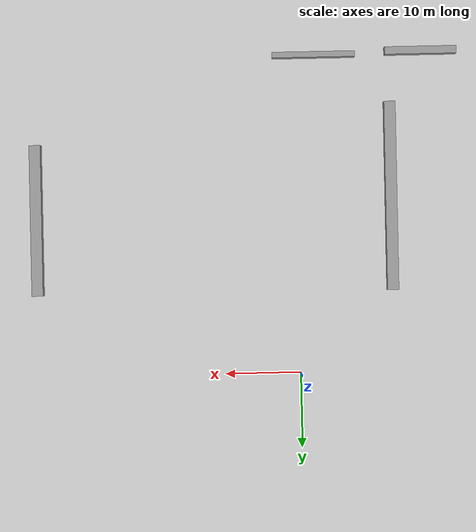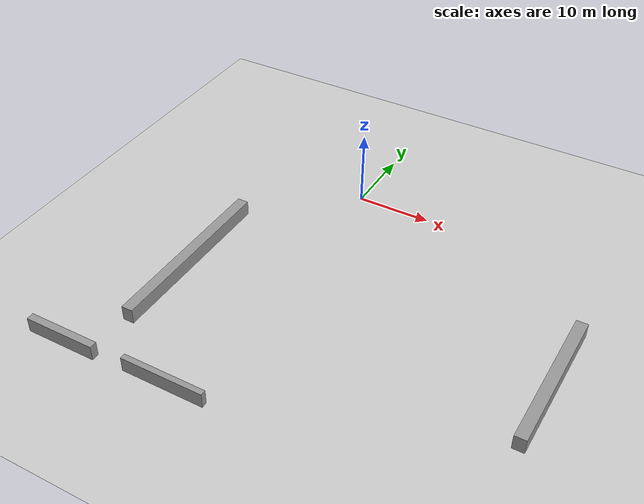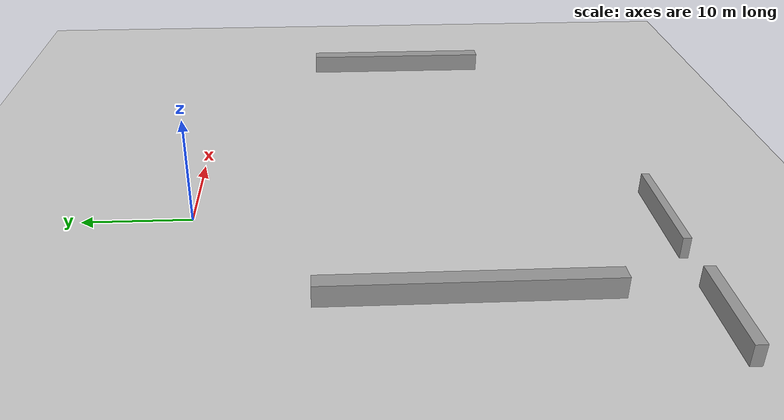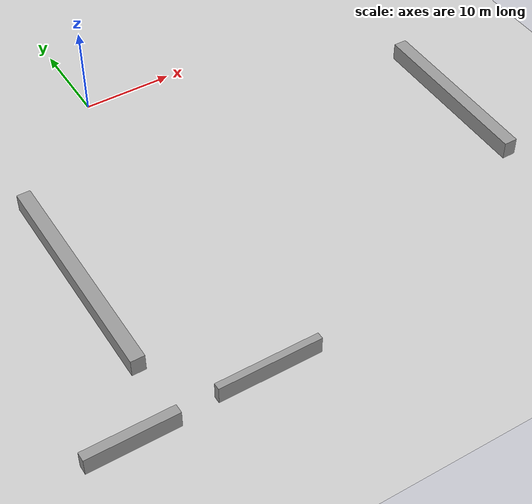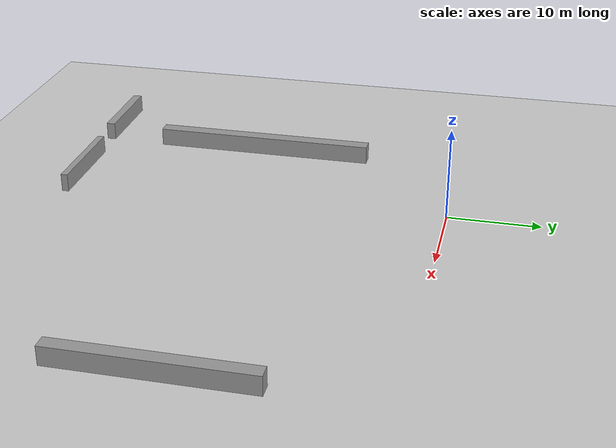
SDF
<sdf version="1.6">
 <world name="default">
  <model name="ground_plane">
   <static>1</static>
   <link name="link">
    <collision name="collision">
     <geometry><plane><normal>0 0 1</normal><size>120 120</size></plane></geometry>
     <surface>
      <contact><collide_bitmask>65535</collide_bitmask></contact>
      <friction><ode><mu>100</mu><mu2>50</mu2></ode></friction>
     </surface>
    </collision>
    <visual name="visual">
     <cast_shadows>0</cast_shadows>
     <geometry><plane><normal>0 0 1</normal><size>120 120</size></plane></geometry>
     <material>
      <script><uri>file://media/materials/scripts/gazebo.material</uri><name>Gazebo/Grey</name></script>
     </material>
    </visual>
   </link>
  </model>
  <model name="box6">
   <link name="link">
    <inertial>
     <mass>50</mass>
     <inertia><ixx>8.33333</ixx><ixy>0</ixy><ixz>0</ixz><iyy>8.33333</iyy><iyz>0</iyz><izz>8.33333</izz></inertia>
    </inertial>
    <pose>4.14432 -4.29449 0.5 0 -0 0</pose>
    <gravity>0</gravity>
    <visual name="visual">
     <geometry><box><size>11 0.75 2</size></box></geometry>
     <material>
      <script><name>Gazebo/Grey</name><uri>file://media/materials/scripts/gazebo.material</uri></script>
      <shader type="pixel"><normal_map>__default__</normal_map></shader>
      <ambient>0.3 0.3 0.3 1</ambient>
      <diffuse>0.7 0.7 0.7 1</diffuse>
      <specular>0.01 0.01 0.01 1</specular>
      <emissive>0 0 0 1</emissive>
     </material>
    </visual>
    <collision name="collision">
     <geometry><box><size>11 0.75 2</size></box></geometry>
     <surface>
      <friction>
       <ode><mu>1</mu><mu2>1</mu2><fdir1>0 0 0</fdir1><slip1>0</slip1><slip2>0</slip2></ode>
       <torsional>
        <coefficient>1</coefficient>
        <patch_radius>0</patch_radius>
        <surface_radius>0</surface_radius>
        <use_patch_radius>1</use_patch_radius>
        <ode><slip>0</slip></ode>
       </torsional>
      </friction>
      <bounce><restitution_coefficient>0</restitution_coefficient><threshold>1e+06</threshold></bounce>
      <contact>
       <collide_without_contact>0</collide_without_contact>
       <collide_without_contact_bitmask>1</collide_without_contact_bitmask>
       <collide_bitmask>1</collide_bitmask>
       <ode>
        <soft_cfm>0</soft_cfm>
        <soft_erp>0.2</soft_erp>
        <kp>1e+13</kp>
        <kd>1</kd>
        <max_vel>0.01</max_vel>
        <min_depth>0</min_depth>
       </ode>
       <bullet>
        <split_impulse>1</split_impulse>
        <split_impulse_penetration_threshold>-0.01</split_impulse_penetration_threshold>
        <soft_cfm>0</soft_cfm>
        <soft_erp>0.2</soft_erp>
        <kp>1e+13</kp>
        <kd>1</kd>
       </bullet>
      </contact>
     </surface>
    </collision>
   </link>
   <static>0</static>
   <pose>-6.59666 -37.9519 0.5 0 -0 0</pose>
  </model>
  <model name="box7">
   <link name="link">
    <inertial>
     <mass>50</mass>
     <inertia><ixx>8.33333</ixx><ixy>0</ixy><ixz>0</ixz><iyy>8.33333</iyy><iyz>0</iyz><izz>8.33333</izz></inertia>
    </inertial>
    <pose>-1.2966 -5.83017 0.5 0 -0 0</pose>
    <gravity>0</gravity>
    <visual name="visual">
     <geometry><box><size>9.5 1 2</size></box></geometry>
     <material>
      <script><name>Gazebo/Grey</name><uri>file://media/materials/scripts/gazebo.material</uri></script>
      <shader type="pixel"><normal_map>__default__</normal_map></shader>
      <ambient>0.3 0.3 0.3 1</ambient>
      <diffuse>0.7 0.7 0.7 1</diffuse>
      <specular>0.01 0.01 0.01 1</specular>
      <emissive>0 0 0 1</emissive>
     </material>
    </visual>
    <collision name="collision">
     <geometry><box><size>9.5 1 2</size></box></geometry>
     <surface>
      <friction>
       <ode><mu>1</mu><mu2>1</mu2><fdir1>0 0 0</fdir1><slip1>0</slip1><slip2>0</slip2></ode>
       <torsional>
        <coefficient>1</coefficient>
        <patch_radius>0</patch_radius>
        <surface_radius>0</surface_radius>
        <use_patch_radius>1</use_patch_radius>
        <ode><slip>0</slip></ode>
       </torsional>
      </friction>
      <bounce><restitution_coefficient>0</restitution_coefficient><threshold>1e+06</threshold></bounce>
      <contact>
       <collide_without_contact>0</collide_without_contact>
       <collide_without_contact_bitmask>1</collide_without_contact_bitmask>
       <collide_bitmask>1</collide_bitmask>
       <ode>
        <soft_cfm>0</soft_cfm>
        <soft_erp>0.2</soft_erp>
        <kp>1e+13</kp>
        <kd>1</kd>
        <max_vel>0.01</max_vel>
        <min_depth>0</min_depth>
       </ode>
       <bullet>
        <split_impulse>1</split_impulse>
        <split_impulse_penetration_threshold>-0.01</split_impulse_penetration_threshold>
        <soft_cfm>0</soft_cfm>
        <soft_erp>0.2</soft_erp>
        <kp>1e+13</kp>
        <kd>1</kd>
       </bullet>
      </contact>
     </surface>
    </collision>
   </link>
   <static>0</static>
   <pose>-15.3526 -36.7241 0.5 0 -0 0</pose>
  </model>
  <model name="box47">
   <link name="link">
    <inertial>
     <mass>50</mass>
     <inertia><ixx>8.33333</ixx><ixy>0</ixy><ixz>0</ixz><iyy>8.33333</iyy><iyz>0</iyz><izz>8.33333</izz></inertia>
    </inertial>
    <pose>-7.06778 -21.3021 0.5 0 -0 0</pose>
    <gravity>0</gravity>
    <visual name="visual">
     <geometry><box><size>1.5 25 2</size></box></geometry>
     <material>
      <script><name>Gazebo/Grey</name><uri>file://media/materials/scripts/gazebo.material</uri></script>
      <shader type="pixel"><normal_map>__default__</normal_map></shader>
      <ambient>0.3 0.3 0.3 1</ambient>
      <diffuse>0.7 0.7 0.7 1</diffuse>
      <specular>0.01 0.01 0.01 1</specular>
      <emissive>0 0 0 1</emissive>
     </material>
    </visual>
    <collision name="collision">
     <geometry><box><size>1.5 25 2</size></box></geometry>
     <surface>
      <friction>
       <ode><mu>1</mu><mu2>1</mu2><fdir1>0 0 0</fdir1><slip1>0</slip1><slip2>0</slip2></ode>
       <torsional>
        <coefficient>1</coefficient>
        <patch_radius>0</patch_radius>
        <surface_radius>0</surface_radius>
        <use_patch_radius>1</use_patch_radius>
        <ode><slip>0</slip></ode>
       </torsional>
      </friction>
      <bounce><restitution_coefficient>0</restitution_coefficient><threshold>1e+06</threshold></bounce>
      <contact>
       <collide_without_contact>0</collide_without_contact>
       <collide_without_contact_bitmask>1</collide_without_contact_bitmask>
       <collide_bitmask>1</collide_bitmask>
       <ode>
        <soft_cfm>0</soft_cfm>
        <soft_erp>0.2</soft_erp>
        <kp>1e+13</kp>
        <kd>1</kd>
        <max_vel>0.01</max_vel>
        <min_depth>0</min_depth>
       </ode>
       <bullet>
        <split_impulse>1</split_impulse>
        <split_impulse_penetration_threshold>-0.01</split_impulse_penetration_threshold>
        <soft_cfm>0</soft_cfm>
        <soft_erp>0.2</soft_erp>
        <kp>1e+13</kp>
        <kd>1</kd>
       </bullet>
      </contact>
     </surface>
    </collision>
   </link>
   <static>0</static>
   <pose>-5.35582 -2.0485 0.5 0 -0 0</pose>
  </model>
  <model name="box48">
   <link name="link">
    <inertial>
     <mass>50</mass>
     <inertia><ixx>8.33333</ixx><ixy>0</ixy><ixz>0</ixz><iyy>8.33333</iyy><iyz>0</iyz><izz>8.33333</izz></inertia>
    </inertial>
    <pose>49.8339 -13.9708 0.5 0 -0 0</pose>
    <gravity>0</gravity>
    <visual name="visual">
     <geometry><box><size>1.5 20 2</size></box></geometry>
     <material>
      <script><name>Gazebo/Grey</name><uri>file://media/materials/scripts/gazebo.material</uri></script>
      <shader type="pixel"><normal_map>__default__</normal_map></shader>
      <ambient>0.3 0.3 0.3 1</ambient>
      <diffuse>0.7 0.7 0.7 1</diffuse>
      <specular>0.01 0.01 0.01 1</specular>
      <emissive>0 0 0 1</emissive>
     </material>
    </visual>
    <collision name="collision">
     <geometry><box><size>1.5 20 2</size></box></geometry>
     <surface>
      <friction>
       <ode><mu>1</mu><mu2>1</mu2><fdir1>0 0 0</fdir1><slip1>0</slip1><slip2>0</slip2></ode>
       <torsional>
        <coefficient>1</coefficient>
        <patch_radius>0</patch_radius>
        <surface_radius>0</surface_radius>
        <use_patch_radius>1</use_patch_radius>
        <ode><slip>0</slip></ode>
       </torsional>
      </friction>
      <bounce><restitution_coefficient>0</restitution_coefficient><threshold>1e+06</threshold></bounce>
      <contact>
       <collide_without_contact>0</collide_without_contact>
       <collide_without_contact_bitmask>1</collide_without_contact_bitmask>
       <collide_bitmask>1</collide_bitmask>
       <ode>
        <soft_cfm>0</soft_cfm>
        <soft_erp>0.2</soft_erp>
        <kp>1e+13</kp>
        <kd>1</kd>
        <max_vel>0.01</max_vel>
        <min_depth>0</min_depth>
       </ode>
       <bullet>
        <split_impulse>1</split_impulse>
        <split_impulse_penetration_threshold>-0.01</split_impulse_penetration_threshold>
        <soft_cfm>0</soft_cfm>
        <soft_erp>0.2</soft_erp>
        <kp>1e+13</kp>
        <kd>1</kd>
       </bullet>
      </contact>
     </surface>
    </collision>
   </link>
   <static>0</static>
   <pose>-15.1095 -6.9593 0.5 0 -0 0</pose>
  </model>
 </world>
</sdf>
